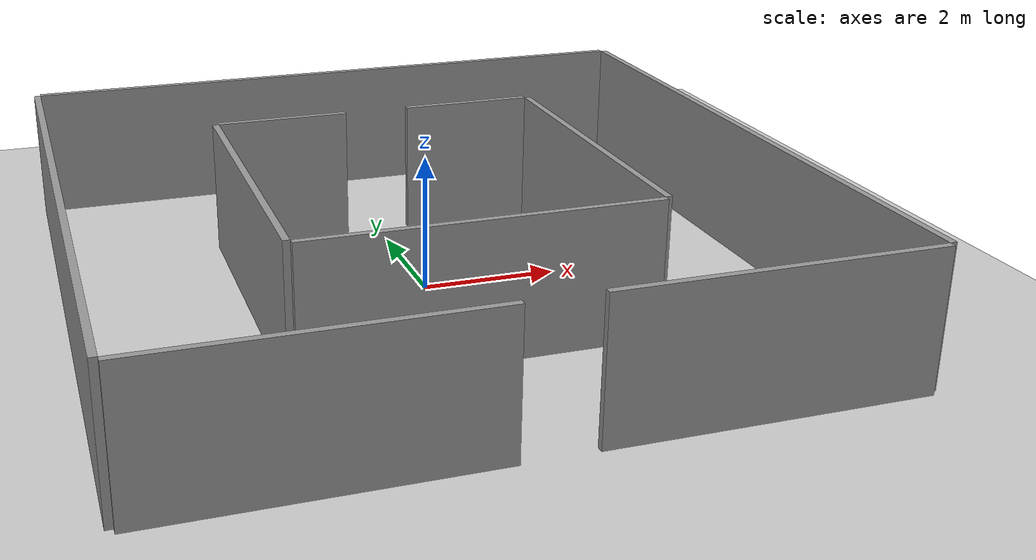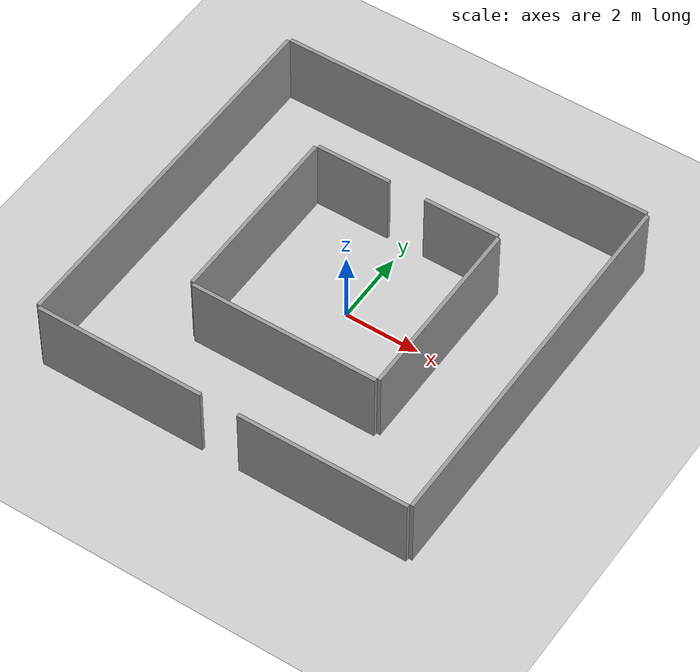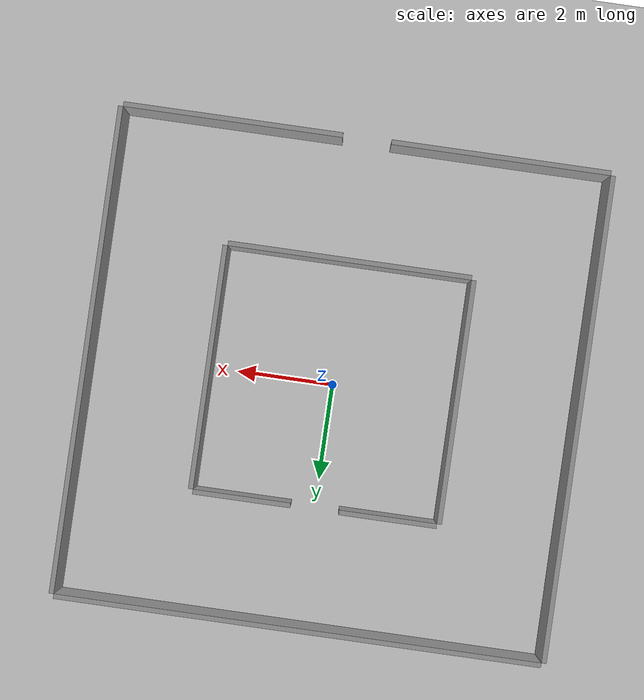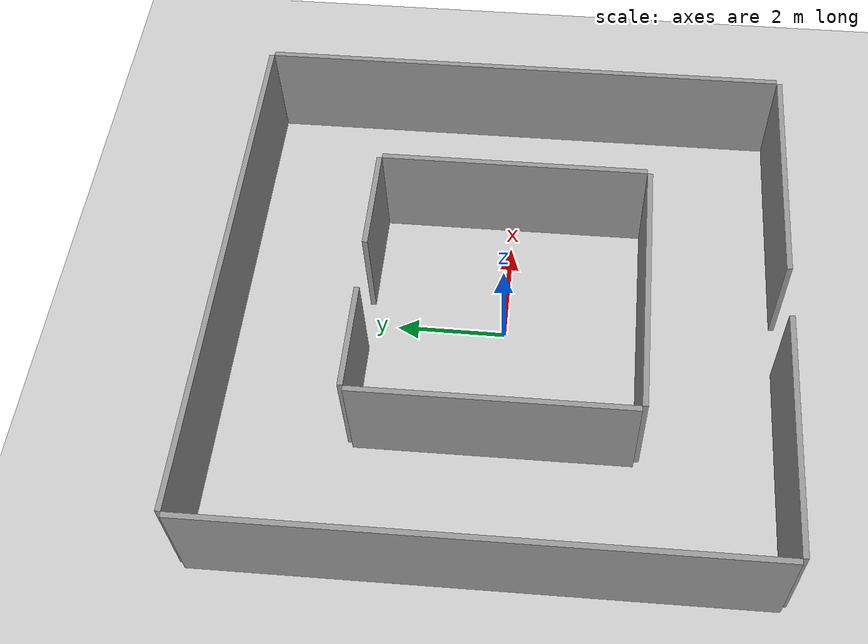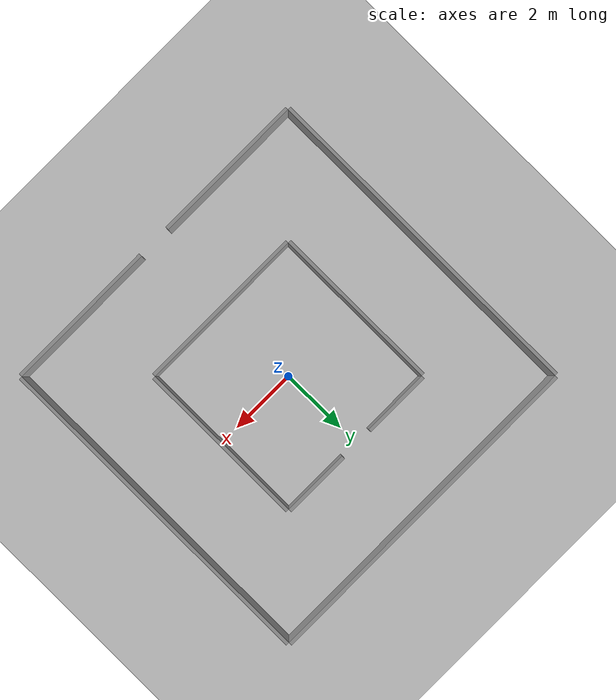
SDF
<?xml version="1.0" ?>
<sdf version="1.6">
  <world name="default">

    <!-- 地面和平行向光源 -->
    <include><uri>model://ground_plane</uri></include>
    <include><uri>model://sun</uri></include>

    <!-- 外墙模型 -->
    <model name="outer_walls">
      <static>true</static>
      <!-- 东墙 -->
      <link name="east_wall">
        <pose>5.05 0 1.0 0 0 0</pose>
        <collision name="coll_east">
          <geometry><box><size>0.1 10.0 2.0</size></box></geometry>
        </collision>
        <visual name="vis_east">
          <geometry><box><size>0.1 10.0 2.0</size></box></geometry>
          <material>
            <script>
              <uri>file://media/materials/scripts/gazebo.material</uri>
              <name>Gazebo/Grey</name>
            </script>
          </material>
        </visual>
      </link>
      <!-- 西墙 -->
      <link name="west_wall">
        <pose>-5.05 0 1.0 0 0 0</pose>
        <collision name="coll_west">
          <geometry><box><size>0.1 10.0 2.0</size></box></geometry>
        </collision>
        <visual name="vis_west">
          <geometry><box><size>0.1 10.0 2.0</size></box></geometry>
          <material>
            <script>
              <uri>file://media/materials/scripts/gazebo.material</uri>
              <name>Gazebo/Grey</name>
            </script>
          </material>
        </visual>
      </link>
      <!-- 北墙 -->
      <link name="north_wall">
        <pose>0 5.05 1.0 0 0 0</pose>
        <collision name="coll_north">
          <geometry><box><size>10.0 0.1 2.0</size></box></geometry>
        </collision>
        <visual name="vis_north">
          <geometry><box><size>10.0 0.1 2.0</size></box></geometry>
          <material>
            <script>
              <uri>file://media/materials/scripts/gazebo.material</uri>
              <name>Gazebo/Grey</name>
            </script>
          </material>
        </visual>
      </link>
      <!-- 南墙，左右分段，各长 4.5m（中间留 1.0m 门口） -->
      <link name="south_wall_left">
        <pose>-2.75 -5.05 1.0 0 0 0</pose>
        <collision name="coll_south_l">
          <geometry><box><size>4.5 0.1 2.0</size></box></geometry>
        </collision>
        <visual name="vis_south_l">
          <geometry><box><size>4.5 0.1 2.0</size></box></geometry>
          <material>
            <script>
              <uri>file://media/materials/scripts/gazebo.material</uri>
              <name>Gazebo/Grey</name>
            </script>
          </material>
        </visual>
      </link>
      <link name="south_wall_right">
        <pose>2.75 -5.05 1.0 0 0 0</pose>
        <collision name="coll_south_r">
          <geometry><box><size>4.5 0.1 2.0</size></box></geometry>
        </collision>
        <visual name="vis_south_r">
          <geometry><box><size>4.5 0.1 2.0</size></box></geometry>
          <material>
            <script>
              <uri>file://media/materials/scripts/gazebo.material</uri>
              <name>Gazebo/Grey</name>
            </script>
          </material>
        </visual>
      </link>
    </model>

    <!-- 内墙模型 -->
    <model name="inner_walls">
      <static>true</static>
      <!-- 东墙 -->
      <link name="inner_east">
        <pose>2.55 0 1.0 0 0 0</pose>
        <collision name="coll_ie">
          <geometry><box><size>0.1 5.0 2.0</size></box></geometry>
        </collision>
        <visual name="vis_ie">
          <geometry><box><size>0.1 5.0 2.0</size></box></geometry>
          <material>
            <script>
              <uri>file://media/materials/scripts/gazebo.material</uri>
              <name>Gazebo/Grey</name>
            </script>
          </material>
        </visual>
      </link>
      <!-- 西墙 -->
      <link name="inner_west">
        <pose>-2.55 0 1.0 0 0 0</pose>
        <collision name="coll_iw">
          <geometry><box><size>0.1 5.0 2.0</size></box></geometry>
        </collision>
        <visual name="vis_iw">
          <geometry><box><size>0.1 5.0 2.0</size></box></geometry>
          <material>
            <script>
              <uri>file://media/materials/scripts/gazebo.material</uri>
              <name>Gazebo/Grey</name>
            </script>
          </material>
        </visual>
      </link>
      <!-- 北墙，左右分段，各长 2.0m（中间留 1.0m 门口，与外墙相同） -->
      <link name="inner_north_left">
        <pose>-1.5 2.55 1.0 0 0 0</pose>
        <collision name="coll_inl">
          <geometry><box><size>2.0 0.1 2.0</size></box></geometry>
        </collision>
        <visual name="vis_inl">
          <geometry><box><size>2.0 0.1 2.0</size></box></geometry>
          <material>
            <script>
              <uri>file://media/materials/scripts/gazebo.material</uri>
              <name>Gazebo/Grey</name>
            </script>
          </material>
        </visual>
      </link>
      <link name="inner_north_right">
        <pose>1.5 2.55 1.0 0 0 0</pose>
        <collision name="coll_inr">
          <geometry><box><size>2.0 0.1 2.0</size></box></geometry>
        </collision>
        <visual name="vis_inr">
          <geometry><box><size>2.0 0.1 2.0</size></box></geometry>
          <material>
            <script>
              <uri>file://media/materials/scripts/gazebo.material</uri>
              <name>Gazebo/Grey</name>
            </script>
          </material>
        </visual>
      </link>
      <!-- 南墙 -->
      <link name="inner_south">
        <pose>0 -2.55 1.0 0 0 0</pose>
        <collision name="coll_is">
          <geometry><box><size>5.0 0.1 2.0</size></box></geometry>
        </collision>
        <visual name="vis_is">
          <geometry><box><size>5.0 0.1 2.0</size></box></geometry>
          <material>
            <script>
              <uri>file://media/materials/scripts/gazebo.material</uri>
              <name>Gazebo/Grey</name>
            </script>
          </material>
        </visual>
      </link>
    </model>

  </world>
</sdf>
